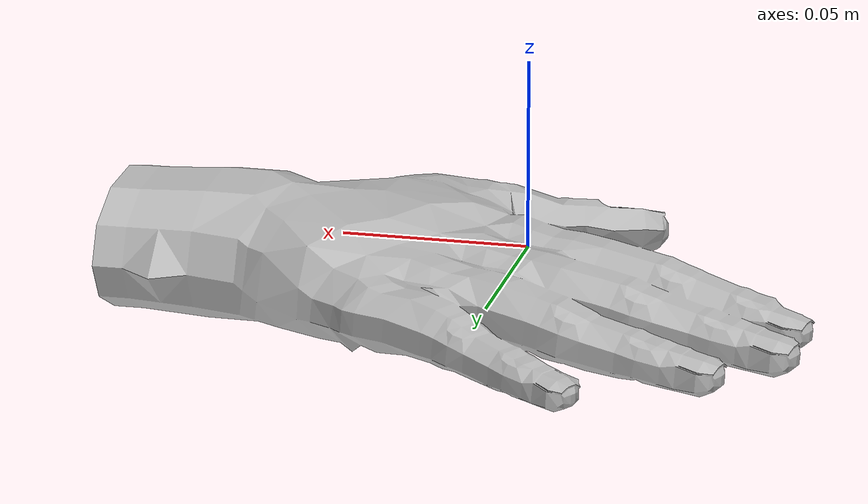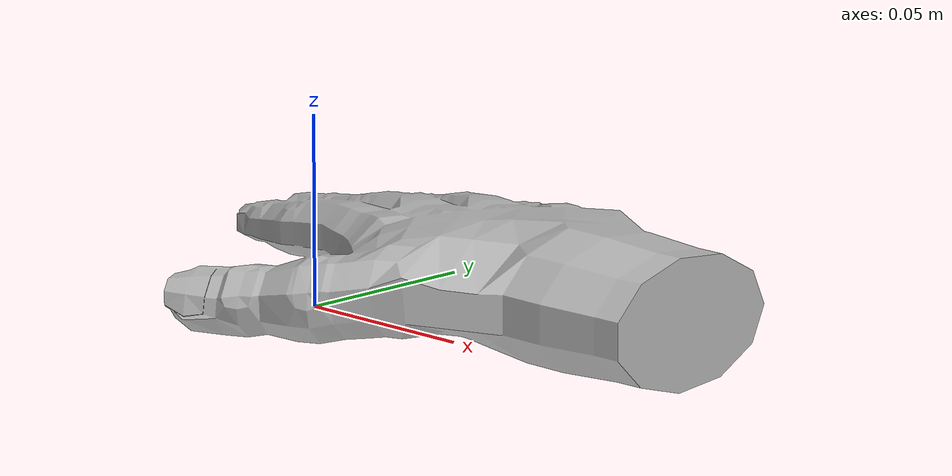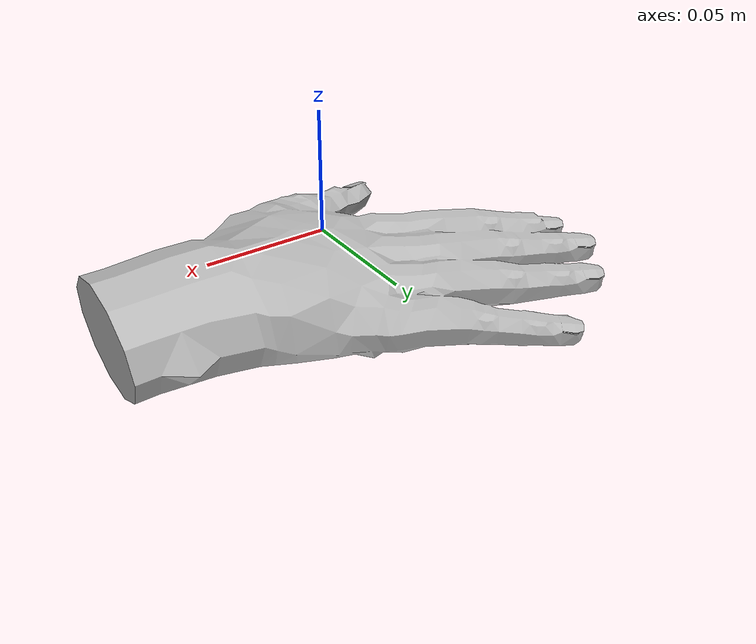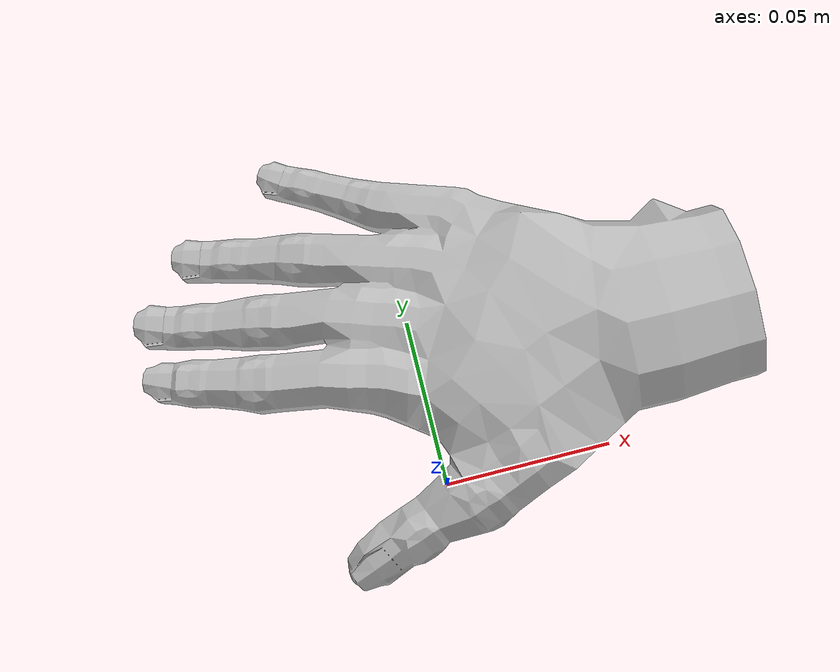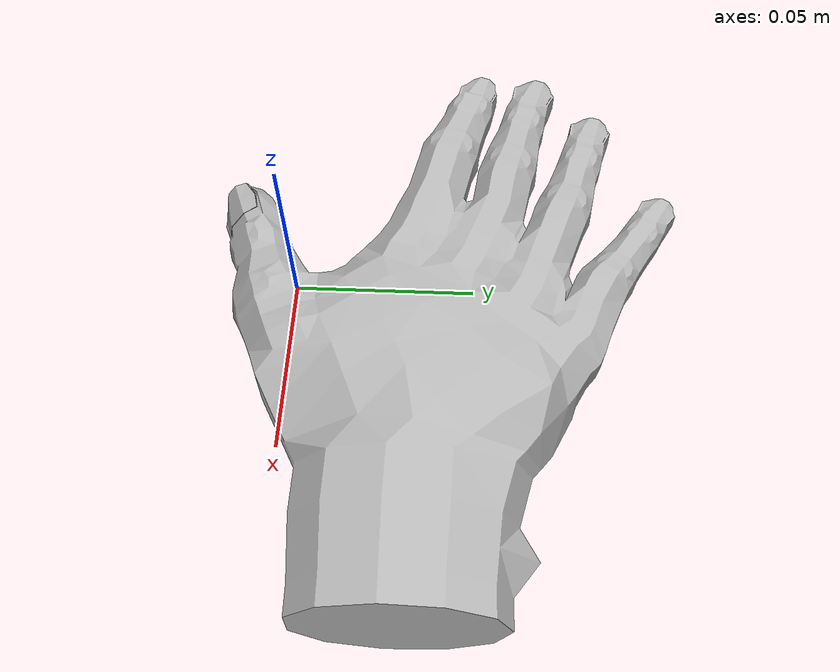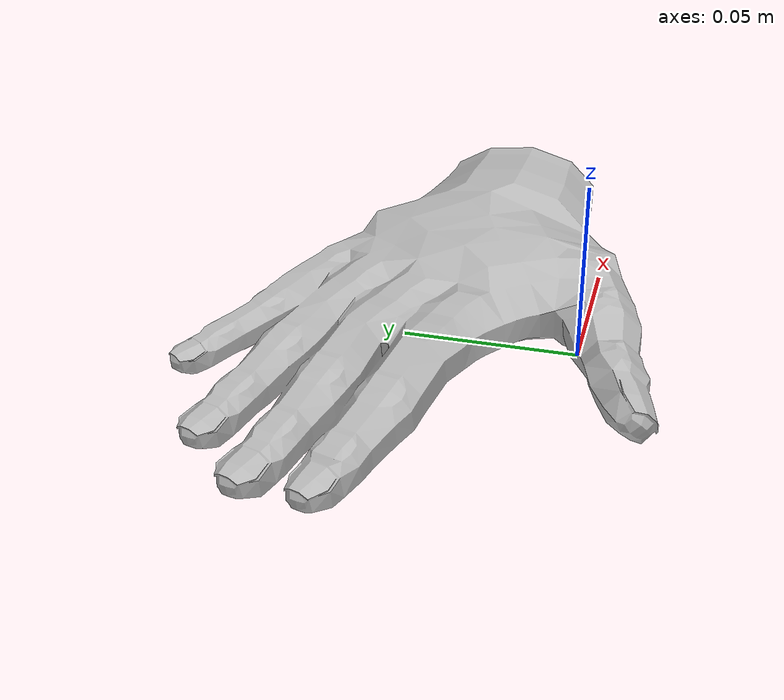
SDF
<?xml version='1.0'?>
<sdf version="1.4">
<model name="hand">
  <pose>0 0 0  0 0 0</pose>
  <static>true</static>
    <link name="link">

      <collision name="collision">
        <geometry>
          <mesh><uri>model://hand/hand.dae</uri></mesh>
        </geometry>
      </collision>

      <visual name="visual">
        <geometry>
          <mesh><uri>model://hand/hand.dae</uri></mesh>
        </geometry>
      </visual>
    </link>
  </model>
</sdf>
